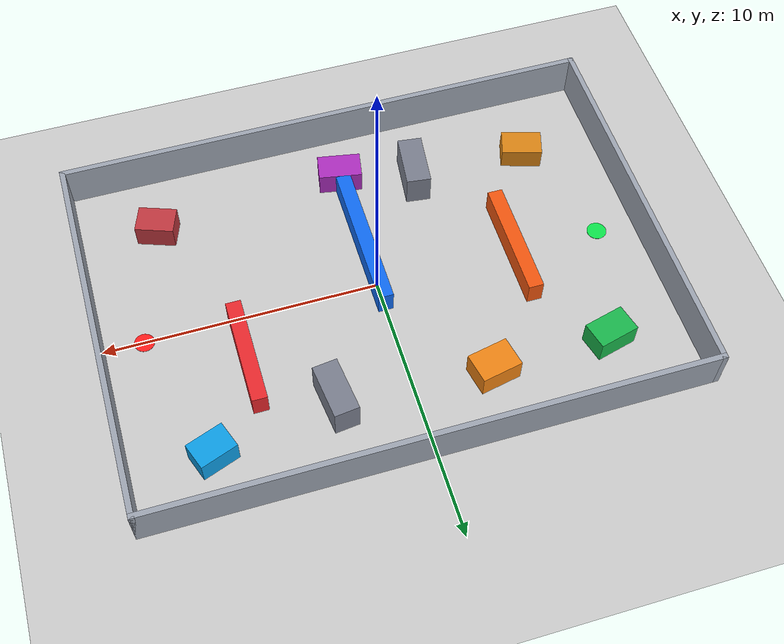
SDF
<?xml version="1.0" ?>
<sdf version="1.7">
  <world name="indoor_obstacle_course_cross_scene_02">
    <model name="ground_plane">
      <static>1</static>
      <link name="link">
        <collision name="collision">
          <geometry>
            <plane>
              <normal>0 0 1</normal>
              <size>100 100</size>
            </plane>
          </geometry>
          <surface>
            <friction>
              <ode>
                <mu>100</mu>
                <mu2>50</mu2>
              </ode>
            </friction>
          </surface>
        </collision>
        <visual name="visual">
          <cast_shadows>0</cast_shadows>
          <geometry>
            <plane>
              <normal>0 0 1</normal>
              <size>100 100</size>
            </plane>
          </geometry>
          <material>
            <script>
              <uri>file://media/materials/scripts/gazebo.material</uri>
              <name>Gazebo/Grey</name>
            </script>
          </material>
        </visual>
      </link>
    </model>

    <light name="sun" type="directional">
      <cast_shadows>1</cast_shadows>
      <pose>0 0 10 0 0 0</pose>
      <diffuse>0.8 0.8 0.8 1</diffuse>
      <specular>0.2 0.2 0.2 1</specular>
      <attenuation>
        <range>1000</range>
        <constant>0.9</constant>
        <linear>0.01</linear>
        <quadratic>0.001</quadratic>
      </attenuation>
      <direction>-0.5 0.1 -0.9</direction>
    </light>
    <scene>
      <ambient>0.65 0.65 0.65 1</ambient>
      <background>0.82 0.86 0.9 1</background>
      <shadows>1</shadows>
      <grid>0</grid>
    </scene>
    <physics type="ode">
      <real_time_update_rate>1000</real_time_update_rate>
      <max_step_size>0.001</max_step_size>
      <real_time_factor>1</real_time_factor>
      <ode>
        <solver>
          <type>quick</type>
          <iters>150</iters>
          <sor>1.4</sor>
        </solver>
        <constraints>
          <cfm>1e-05</cfm>
          <erp>0.2</erp>
          <contact_max_correcting_vel>2000</contact_max_correcting_vel>
          <contact_surface_layer>0.01</contact_surface_layer>
        </constraints>
      </ode>
    </physics>
    <plugin name="gazebo_ros_state" filename="libgazebo_ros_state.so">
      <ros>
        <namespace>/gazebo</namespace>
        <remapping>model_states:=model_states</remapping>
      </ros>
      <update_rate>30.0</update_rate>
    </plugin>

    <model name="wall_north">
      <static>1</static>
      <pose>0 7 0.8 0 0 0</pose>
      <link name="link">
        <collision name="collision"><geometry><box><size>20.2 0.2 1.6</size></box></geometry></collision>
        <visual name="visual"><geometry><box><size>20.2 0.2 1.6</size></box></geometry><material><ambient>0.55 0.58 0.62 1</ambient><diffuse>0.62 0.65 0.7 1</diffuse></material></visual>
      </link>
    </model>
    <model name="wall_south">
      <static>1</static>
      <pose>0 -7 0.8 0 0 0</pose>
      <link name="link">
        <collision name="collision"><geometry><box><size>20.2 0.2 1.6</size></box></geometry></collision>
        <visual name="visual"><geometry><box><size>20.2 0.2 1.6</size></box></geometry><material><ambient>0.55 0.58 0.62 1</ambient><diffuse>0.62 0.65 0.7 1</diffuse></material></visual>
      </link>
    </model>
    <model name="wall_east">
      <static>1</static>
      <pose>10 0 0.8 0 0 0</pose>
      <link name="link">
        <collision name="collision"><geometry><box><size>0.2 14.2 1.6</size></box></geometry></collision>
        <visual name="visual"><geometry><box><size>0.2 14.2 1.6</size></box></geometry><material><ambient>0.55 0.58 0.62 1</ambient><diffuse>0.62 0.65 0.7 1</diffuse></material></visual>
      </link>
    </model>
    <model name="wall_west">
      <static>1</static>
      <pose>-10 0 0.8 0 0 0</pose>
      <link name="link">
        <collision name="collision"><geometry><box><size>0.2 14.2 1.6</size></box></geometry></collision>
        <visual name="visual"><geometry><box><size>0.2 14.2 1.6</size></box></geometry><material><ambient>0.55 0.58 0.62 1</ambient><diffuse>0.62 0.65 0.7 1</diffuse></material></visual>
      </link>
    </model>

    <!-- Three vertical barriers leave an alternating north/south route. -->
    <model name="barrier_west">
      <static>1</static>
      <pose>-5.2 0 0.45 0 0 0</pose>
      <link name="link">
        <collision name="collision"><geometry><box><size>0.55 4.4 0.9</size></box></geometry></collision>
        <visual name="visual"><geometry><box><size>0.55 4.4 0.9</size></box></geometry><material><ambient>0.85 0.28 0.05 1</ambient><diffuse>0.95 0.34 0.06 1</diffuse></material></visual>
      </link>
    </model>
    <model name="barrier_center">
      <static>1</static>
      <pose>0 -1.7 0.45 0 0 1.5708</pose>
      <link name="link">
        <collision name="collision"><geometry><box><size>5.6 0.55 0.9</size></box></geometry></collision>
        <visual name="visual"><geometry><box><size>5.6 0.55 0.9</size></box></geometry><material><ambient>0.08 0.32 0.78 1</ambient><diffuse>0.06 0.42 0.95 1</diffuse></material></visual>
      </link>
    </model>
    <model name="barrier_east">
      <static>1</static>
      <pose>5.2 1.8 0.45 0 0 0</pose>
      <link name="link">
        <collision name="collision"><geometry><box><size>0.55 4 0.9</size></box></geometry></collision>
        <visual name="visual"><geometry><box><size>0.55 4 0.9</size></box></geometry><material><ambient>0.78 0.12 0.14 1</ambient><diffuse>0.92 0.16 0.18 1</diffuse></material></visual>
      </link>
    </model>

    <!-- Side objects add visual clutter without closing the north/south route. -->
    <model name="crate_west_north">
      <static>1</static>
      <pose>-7.1 4.5 0.45 0 0 0.25</pose>
      <link name="link">
        <collision name="collision"><geometry><box><size>1.5 1 0.9</size></box></geometry></collision>
        <visual name="visual"><geometry><box><size>1.5 1 0.9</size></box></geometry><material><ambient>0.08 0.58 0.25 1</ambient><diffuse>0.1 0.72 0.3 1</diffuse></material></visual>
      </link>
    </model>
    <model name="crate_west_south">
      <static>1</static>
      <pose>-7.0 -4.2 0.4 0 0 -0.3</pose>
      <link name="link">
        <collision name="collision"><geometry><box><size>1.5 1 0.8</size></box></geometry></collision>
        <visual name="visual"><geometry><box><size>1.5 1 0.8</size></box></geometry><material><ambient>0.72 0.42 0.06 1</ambient><diffuse>0.86 0.52 0.08 1</diffuse></material></visual>
      </link>
    </model>
    <model name="crate_center_north">
      <static>1</static>
      <pose>-2.8 4.6 0.45 0 0 0.2</pose>
      <link name="link">
        <collision name="collision"><geometry><box><size>1.5 1.1 0.9</size></box></geometry></collision>
        <visual name="visual"><geometry><box><size>1.5 1.1 0.9</size></box></geometry><material><ambient>0.78 0.4 0.06 1</ambient><diffuse>0.94 0.52 0.08 1</diffuse></material></visual>
      </link>
    </model>
    <model name="crate_center_south">
      <static>1</static>
      <pose>0.0 -5.0 0.45 0 0 -0.18</pose>
      <link name="link">
        <collision name="collision"><geometry><box><size>1.6 1 0.9</size></box></geometry></collision>
        <visual name="visual"><geometry><box><size>1.6 1 0.9</size></box></geometry><material><ambient>0.52 0.12 0.58 1</ambient><diffuse>0.68 0.18 0.75 1</diffuse></material></visual>
      </link>
    </model>
    <model name="crate_east_north">
      <static>1</static>
      <pose>7.1 5.0 0.45 0 0 0.35</pose>
      <link name="link">
        <collision name="collision"><geometry><box><size>1.4 1 0.9</size></box></geometry></collision>
        <visual name="visual"><geometry><box><size>1.4 1 0.9</size></box></geometry><material><ambient>0.04 0.48 0.72 1</ambient><diffuse>0.05 0.62 0.9 1</diffuse></material></visual>
      </link>
    </model>
    <model name="crate_east_south">
      <static>1</static>
      <pose>7.1 -4.5 0.45 0 0 -0.35</pose>
      <link name="link">
        <collision name="collision"><geometry><box><size>1.4 1 0.9</size></box></geometry></collision>
        <visual name="visual"><geometry><box><size>1.4 1 0.9</size></box></geometry><material><ambient>0.58 0.16 0.2 1</ambient><diffuse>0.76 0.22 0.25 1</diffuse></material></visual>
      </link>
    </model>
    <model name="pillar_center_north">
      <static>1</static>
      <pose>2.7 4.25 0.6 0 0 0.12</pose>
      <link name="link">
        <collision name="collision"><geometry><box><size>0.9 2 1.2</size></box></geometry></collision>
        <visual name="visual"><geometry><box><size>0.9 2 1.2</size></box></geometry><material><ambient>0.36 0.36 0.4 1</ambient><diffuse>0.48 0.5 0.56 1</diffuse></material></visual>
      </link>
    </model>
    <model name="pillar_center_south">
      <static>1</static>
      <pose>-2.7 -4.25 0.6 0 0 -0.12</pose>
      <link name="link">
        <collision name="collision"><geometry><box><size>0.9 2 1.2</size></box></geometry></collision>
        <visual name="visual"><geometry><box><size>0.9 2 1.2</size></box></geometry><material><ambient>0.36 0.36 0.4 1</ambient><diffuse>0.48 0.5 0.56 1</diffuse></material></visual>
      </link>
    </model>

    <model name="start_marker">
      <static>1</static>
      <pose>-8.5 0 0.006 0 0 0</pose>
      <link name="link">
        <visual name="visual">
          <geometry><cylinder><radius>0.36</radius><length>0.012</length></cylinder></geometry>
          <material><ambient>0.05 0.75 0.25 1</ambient><diffuse>0.05 0.9 0.3 1</diffuse></material>
        </visual>
      </link>
    </model>
    <model name="goal_marker">
      <static>1</static>
      <pose>8.5 0 0.007 0 0 0</pose>
      <link name="link">
        <visual name="visual">
          <geometry><cylinder><radius>0.36</radius><length>0.014</length></cylinder></geometry>
          <material><ambient>0.9 0.08 0.08 1</ambient><diffuse>1 0.12 0.12 1</diffuse></material>
        </visual>
      </link>
    </model>

    <gui fullscreen="0">
      <camera name="user_camera">
        <pose>0 0 25 0 1.5708 1.5708</pose>
        <view_controller>orbit</view_controller>
        <projection_type>perspective</projection_type>
      </camera>
    </gui>
    <gravity>0 0 -9.8</gravity>
    <magnetic_field>6e-06 2.3e-05 -4.2e-05</magnetic_field>
    <atmosphere type="adiabatic"/>
    <audio><device>default</device></audio>
    <wind/>
    <spherical_coordinates>
      <surface_model>EARTH_WGS84</surface_model>
      <latitude_deg>0</latitude_deg>
      <longitude_deg>0</longitude_deg>
      <elevation>0</elevation>
      <heading_deg>0</heading_deg>
    </spherical_coordinates>
  </world>
</sdf>
